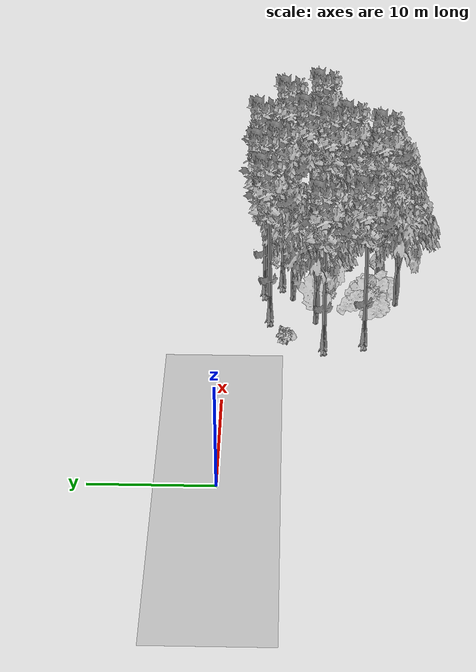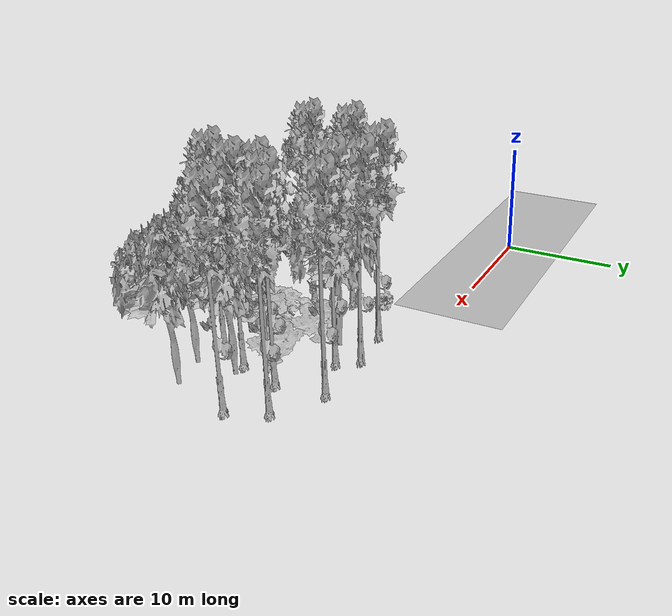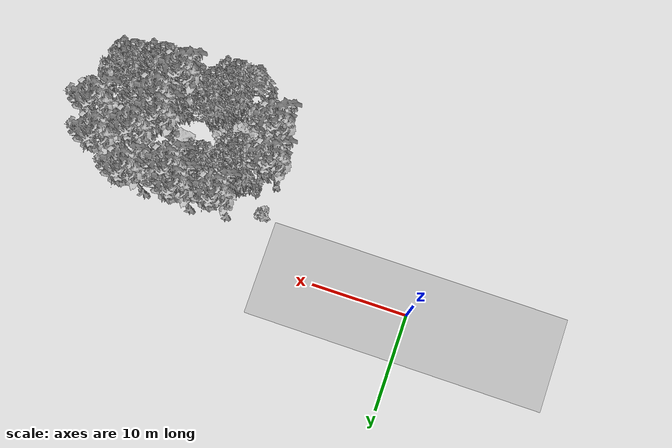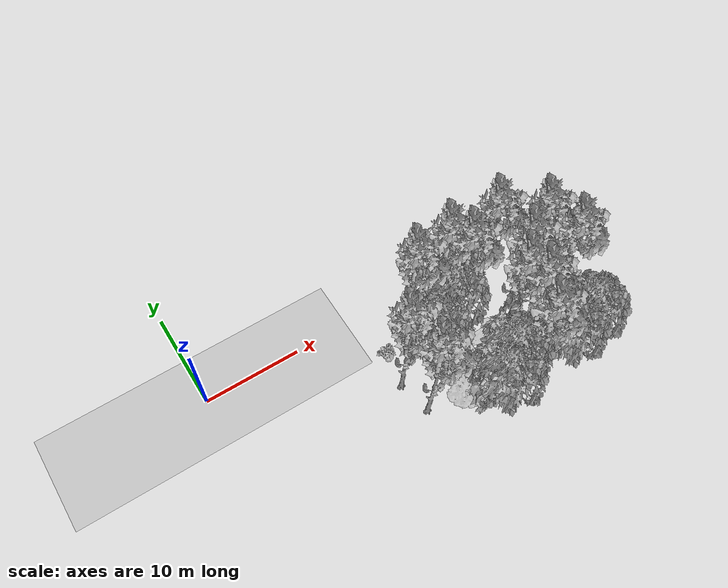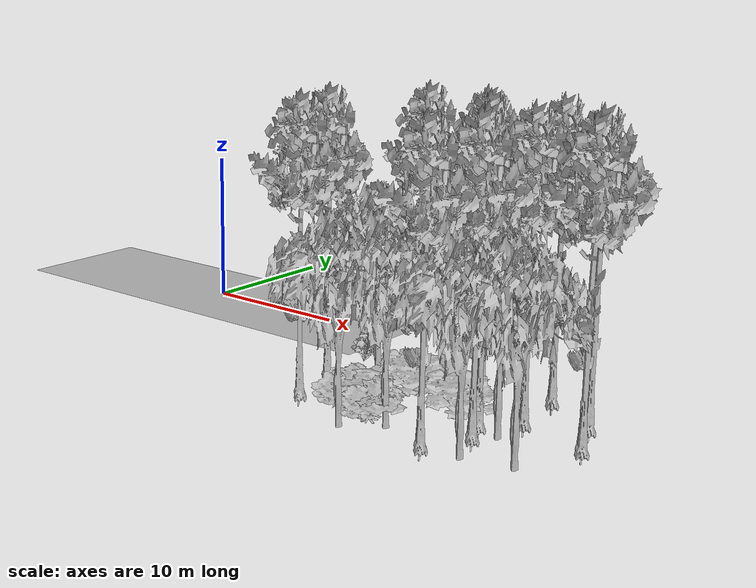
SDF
<sdf version="1.7">
 <world name="default">
  <model name="ground_plane">
   <static>1</static>
   <link name="link">
    <collision name="collision">
     <pose>-50 0 0 0 -0 0</pose>
     <geometry><plane><normal>0 0 1</normal><size>100 100</size></plane></geometry>
     <surface><contact><ode><min_depth>0.01</min_depth><max_vel>0</max_vel></ode></contact></surface>
    </collision>
    <visual name="grass">
     <cast_shadows>0</cast_shadows>
     <geometry>
      <mesh>
       <scale>0.5814285714285714 0.18142857142857144 0.1</scale>
       <uri>file://grass_plane/meshes/grass_plane.dae</uri>
      </mesh>
     </geometry>
    </visual>
   </link>
  </model>
  <model name="Tree 26">
   <static>1</static>
   <pose>24.348586820520367 -3.27734799783655 0 1.57079 -0 0</pose>
   <link name="link">
    <collision name="collision">
     <geometry><mesh><scale>3.5 5 3.5</scale><uri>model://tree_9/meshes/tree_9.obj</uri></mesh></geometry>
    </collision>
    <visual name="visual">
     <geometry><mesh><scale>3.5 5 3.5</scale><uri>model://tree_9/meshes/tree_9.obj</uri></mesh></geometry>
    </visual>
   </link>
  </model>
  <model name="Tree 32">
   <static>1</static>
   <pose>28.1410045352838 -9.11618545782786 0 1.57079 -0 0</pose>
   <link name="link">
    <collision name="collision">
     <geometry><mesh><scale>3.5 5 3.5</scale><uri>model://tree_9/meshes/tree_9.obj</uri></mesh></geometry>
    </collision>
    <visual name="visual">
     <geometry><mesh><scale>3.5 5 3.5</scale><uri>model://tree_9/meshes/tree_9.obj</uri></mesh></geometry>
    </visual>
   </link>
  </model>
  <model name="Tree 52">
   <static>1</static>
   <pose>22.65664677579072 -8.141286314784715 0 1.57079 -0 0</pose>
   <link name="link">
    <collision name="collision">
     <geometry><mesh><scale>3 2 3</scale><uri>model://tree_3/meshes/tree_3.obj</uri></mesh></geometry>
    </collision>
    <visual name="visual">
     <geometry><mesh><scale>3 2 3</scale><uri>model://tree_3/meshes/tree_3.obj</uri></mesh></geometry>
    </visual>
   </link>
  </model>
  <model name="Tree 58">
   <static>1</static>
   <pose>30.109641436157347 -10.506229043127068 0 1.57079 -0 0</pose>
   <link name="link">
    <collision name="collision">
     <geometry><mesh><scale>3.5 5 3.5</scale><uri>model://tree_2/meshes/tree_2.obj</uri></mesh></geometry>
    </collision>
    <visual name="visual">
     <geometry><mesh><scale>3.5 5 3.5</scale><uri>model://tree_2/meshes/tree_2.obj</uri></mesh></geometry>
    </visual>
   </link>
  </model>
  <model name="Tree 95">
   <static>1</static>
   <pose>32.90566931742876 -13.367532291856472 0 1.57079 -0 0</pose>
   <link name="link">
    <collision name="collision">
     <geometry><mesh><scale>3.5 5 3.5</scale><uri>model://tree_2/meshes/tree_2.obj</uri></mesh></geometry>
    </collision>
    <visual name="visual">
     <geometry><mesh><scale>3.5 5 3.5</scale><uri>model://tree_2/meshes/tree_2.obj</uri></mesh></geometry>
    </visual>
   </link>
  </model>
  <model name="Tree 98">
   <static>1</static>
   <pose>20.62653883888551 -3.7580819359981295 0 1.57079 -0 0</pose>
   <link name="link">
    <collision name="collision">
     <geometry><mesh><scale>3.5 5 3.5</scale><uri>model://tree_9/meshes/tree_9.obj</uri></mesh></geometry>
    </collision>
    <visual name="visual">
     <geometry><mesh><scale>3.5 5 3.5</scale><uri>model://tree_9/meshes/tree_9.obj</uri></mesh></geometry>
    </visual>
   </link>
  </model>
  <model name="Tree 102">
   <static>1</static>
   <pose>27.483682154745154 -13.63478624488862 0 1.57079 -0 0</pose>
   <link name="link">
    <collision name="collision">
     <geometry><mesh><scale>3.5 5 3.5</scale><uri>model://tree_9/meshes/tree_9.obj</uri></mesh></geometry>
    </collision>
    <visual name="visual">
     <geometry><mesh><scale>3.5 5 3.5</scale><uri>model://tree_9/meshes/tree_9.obj</uri></mesh></geometry>
    </visual>
   </link>
  </model>
  <model name="Tree 105">
   <static>1</static>
   <pose>28.83437443682236 -10.810567302286902 0 1.57079 -0 0</pose>
   <link name="link">
    <collision name="collision">
     <geometry><mesh><scale>3.5 5 3.5</scale><uri>model://tree_9/meshes/tree_9.obj</uri></mesh></geometry>
    </collision>
    <visual name="visual">
     <geometry><mesh><scale>3.5 5 3.5</scale><uri>model://tree_9/meshes/tree_9.obj</uri></mesh></geometry>
    </visual>
   </link>
  </model>
  <model name="Tree 115">
   <static>1</static>
   <pose>34.11664348639894 -8.53609645270857 0 1.57079 -0 0</pose>
   <link name="link">
    <collision name="collision">
     <geometry><mesh><scale>3.5 5 3.5</scale><uri>model://tree_9/meshes/tree_9.obj</uri></mesh></geometry>
    </collision>
    <visual name="visual">
     <geometry><mesh><scale>3.5 5 3.5</scale><uri>model://tree_9/meshes/tree_9.obj</uri></mesh></geometry>
    </visual>
   </link>
  </model>
  <model name="Tree 122">
   <static>1</static>
   <pose>23.379378452661754 -12.749944070699577 0 1.57079 -0 0</pose>
   <link name="link">
    <collision name="collision">
     <geometry><mesh><scale>4 2.5 4</scale><uri>model://tree_1/meshes/tree_1.obj</uri></mesh></geometry>
    </collision>
    <visual name="visual">
     <geometry><mesh><scale>4 2.5 4</scale><uri>model://tree_1/meshes/tree_1.obj</uri></mesh></geometry>
    </visual>
   </link>
  </model>
  <model name="Tree 132">
   <static>1</static>
   <pose>29.333269141448625 -3.3335774109616274 0 1.57079 -0 0</pose>
   <link name="link">
    <collision name="collision">
     <geometry><mesh><scale>3.5 5 3.5</scale><uri>model://tree_9/meshes/tree_9.obj</uri></mesh></geometry>
    </collision>
    <visual name="visual">
     <geometry><mesh><scale>3.5 5 3.5</scale><uri>model://tree_9/meshes/tree_9.obj</uri></mesh></geometry>
    </visual>
   </link>
  </model>
  <model name="Tree 141">
   <static>1</static>
   <pose>22.68980191085012 -14.672281383016237 0 1.57079 -0 0</pose>
   <link name="link">
    <collision name="collision">
     <geometry><mesh><scale>3.5 5 3.5</scale><uri>model://tree_2/meshes/tree_2.obj</uri></mesh></geometry>
    </collision>
    <visual name="visual">
     <geometry><mesh><scale>3.5 5 3.5</scale><uri>model://tree_2/meshes/tree_2.obj</uri></mesh></geometry>
    </visual>
   </link>
  </model>
  <model name="Tree 156">
   <static>1</static>
   <pose>23.28627720998331 -5.754277248088972 0 1.57079 -0 0</pose>
   <link name="link">
    <collision name="collision">
     <geometry><mesh><scale>3.5 5 3.5</scale><uri>model://tree_2/meshes/tree_2.obj</uri></mesh></geometry>
    </collision>
    <visual name="visual">
     <geometry><mesh><scale>3.5 5 3.5</scale><uri>model://tree_2/meshes/tree_2.obj</uri></mesh></geometry>
    </visual>
   </link>
  </model>
  <model name="Tree 161">
   <static>1</static>
   <pose>24.707138854435726 -13.131024949109607 0 1.57079 -0 0</pose>
   <link name="link">
    <collision name="collision">
     <geometry><mesh><scale>3.5 5 3.5</scale><uri>model://tree_2/meshes/tree_2.obj</uri></mesh></geometry>
    </collision>
    <visual name="visual">
     <geometry><mesh><scale>3.5 5 3.5</scale><uri>model://tree_2/meshes/tree_2.obj</uri></mesh></geometry>
    </visual>
   </link>
  </model>
  <model name="Tree 165">
   <static>1</static>
   <pose>21.117786870641652 -12.011047022346652 0 1.57079 -0 0</pose>
   <link name="link">
    <collision name="collision">
     <geometry><mesh><scale>4 2.5 4</scale><uri>model://tree_1/meshes/tree_1.obj</uri></mesh></geometry>
    </collision>
    <visual name="visual">
     <geometry><mesh><scale>4 2.5 4</scale><uri>model://tree_1/meshes/tree_1.obj</uri></mesh></geometry>
    </visual>
   </link>
  </model>
  <model name="Tree 206">
   <static>1</static>
   <pose>20.036087480754304 -7.728608393328371 0 1.57079 -0 0</pose>
   <link name="link">
    <collision name="collision">
     <geometry><mesh><scale>3.5 5 3.5</scale><uri>model://tree_2/meshes/tree_2.obj</uri></mesh></geometry>
    </collision>
    <visual name="visual">
     <geometry><mesh><scale>3.5 5 3.5</scale><uri>model://tree_2/meshes/tree_2.obj</uri></mesh></geometry>
    </visual>
   </link>
  </model>
  <model name="Tree 217">
   <static>1</static>
   <pose>29.85045239668827 -7.262520035384345 0 1.57079 -0 0</pose>
   <link name="link">
    <collision name="collision">
     <geometry><mesh><scale>3.5 5 3.5</scale><uri>model://tree_9/meshes/tree_9.obj</uri></mesh></geometry>
    </collision>
    <visual name="visual">
     <geometry><mesh><scale>3.5 5 3.5</scale><uri>model://tree_9/meshes/tree_9.obj</uri></mesh></geometry>
    </visual>
   </link>
  </model>
  <model name="Tree 223">
   <static>1</static>
   <pose>16.796326421422876 -8.356118637601629 0 1.57079 -0 0</pose>
   <link name="link">
    <collision name="collision">
     <geometry><mesh><scale>3.5 5 3.5</scale><uri>model://tree_9/meshes/tree_9.obj</uri></mesh></geometry>
    </collision>
    <visual name="visual">
     <geometry><mesh><scale>3.5 5 3.5</scale><uri>model://tree_9/meshes/tree_9.obj</uri></mesh></geometry>
    </visual>
   </link>
  </model>
  <model name="Tree 236">
   <static>1</static>
   <pose>25.522788892645607 -4.809894564763425 0 1.57079 -0 0</pose>
   <link name="link">
    <collision name="collision">
     <geometry><mesh><scale>3.5 5 3.5</scale><uri>model://tree_9/meshes/tree_9.obj</uri></mesh></geometry>
    </collision>
    <visual name="visual">
     <geometry><mesh><scale>3.5 5 3.5</scale><uri>model://tree_9/meshes/tree_9.obj</uri></mesh></geometry>
    </visual>
   </link>
  </model>
  <model name="Tree 242">
   <static>1</static>
   <pose>17.52204572332022 -11.76904988431556 0 1.57079 -0 0</pose>
   <link name="link">
    <collision name="collision">
     <geometry><mesh><scale>3.5 5 3.5</scale><uri>model://tree_9/meshes/tree_9.obj</uri></mesh></geometry>
    </collision>
    <visual name="visual">
     <geometry><mesh><scale>3.5 5 3.5</scale><uri>model://tree_9/meshes/tree_9.obj</uri></mesh></geometry>
    </visual>
   </link>
  </model>
  <model name="Tree 258">
   <static>1</static>
   <pose>30.085977086477314 -14.023860334460277 0 1.57079 -0 0</pose>
   <link name="link">
    <collision name="collision">
     <geometry><mesh><scale>3.5 5 3.5</scale><uri>model://tree_2/meshes/tree_2.obj</uri></mesh></geometry>
    </collision>
    <visual name="visual">
     <geometry><mesh><scale>3.5 5 3.5</scale><uri>model://tree_2/meshes/tree_2.obj</uri></mesh></geometry>
    </visual>
   </link>
  </model>
  <model name="Tree 278">
   <static>1</static>
   <pose>22.77166937133525 -12.732854722554517 0 1.57079 -0 0</pose>
   <link name="link">
    <collision name="collision">
     <geometry><mesh><scale>3 2 3</scale><uri>model://tree_3/meshes/tree_3.obj</uri></mesh></geometry>
    </collision>
    <visual name="visual">
     <geometry><mesh><scale>3 2 3</scale><uri>model://tree_3/meshes/tree_3.obj</uri></mesh></geometry>
    </visual>
   </link>
  </model>
  <model name="Tree 282">
   <static>1</static>
   <pose>32.910349899181995 -5.574300191215714 0 1.57079 -0 0</pose>
   <link name="link">
    <collision name="collision">
     <geometry><mesh><scale>3.5 5 3.5</scale><uri>model://tree_9/meshes/tree_9.obj</uri></mesh></geometry>
    </collision>
    <visual name="visual">
     <geometry><mesh><scale>3.5 5 3.5</scale><uri>model://tree_9/meshes/tree_9.obj</uri></mesh></geometry>
    </visual>
   </link>
  </model>
  <model name="Tree 287">
   <static>1</static>
   <pose>26.67744309165215 -9.346217826389143 0 1.57079 -0 0</pose>
   <link name="link">
    <collision name="collision">
     <geometry><mesh><scale>3 2 3</scale><uri>model://tree_3/meshes/tree_3.obj</uri></mesh></geometry>
    </collision>
    <visual name="visual">
     <geometry><mesh><scale>3 2 3</scale><uri>model://tree_3/meshes/tree_3.obj</uri></mesh></geometry>
    </visual>
   </link>
  </model>
  <model name="Bush 1">
   <static>1</static>
   <pose>17.16167956026392 -5.251352919466905 0 1.57079 -0 0</pose>
   <link name="link">
    <collision name="collision">
     <geometry><mesh><scale>2 2 2</scale><uri>model://bush_1/meshes/bush_1.obj</uri></mesh></geometry>
     <surface><contact><collide_without_contact>false</collide_without_contact></contact></surface>
    </collision>
    <visual name="visual">
     <geometry><mesh><scale>2 2 2</scale><uri>model://bush_1/meshes/bush_1.obj</uri></mesh></geometry>
    </visual>
   </link>
  </model>
 </world>
</sdf>
